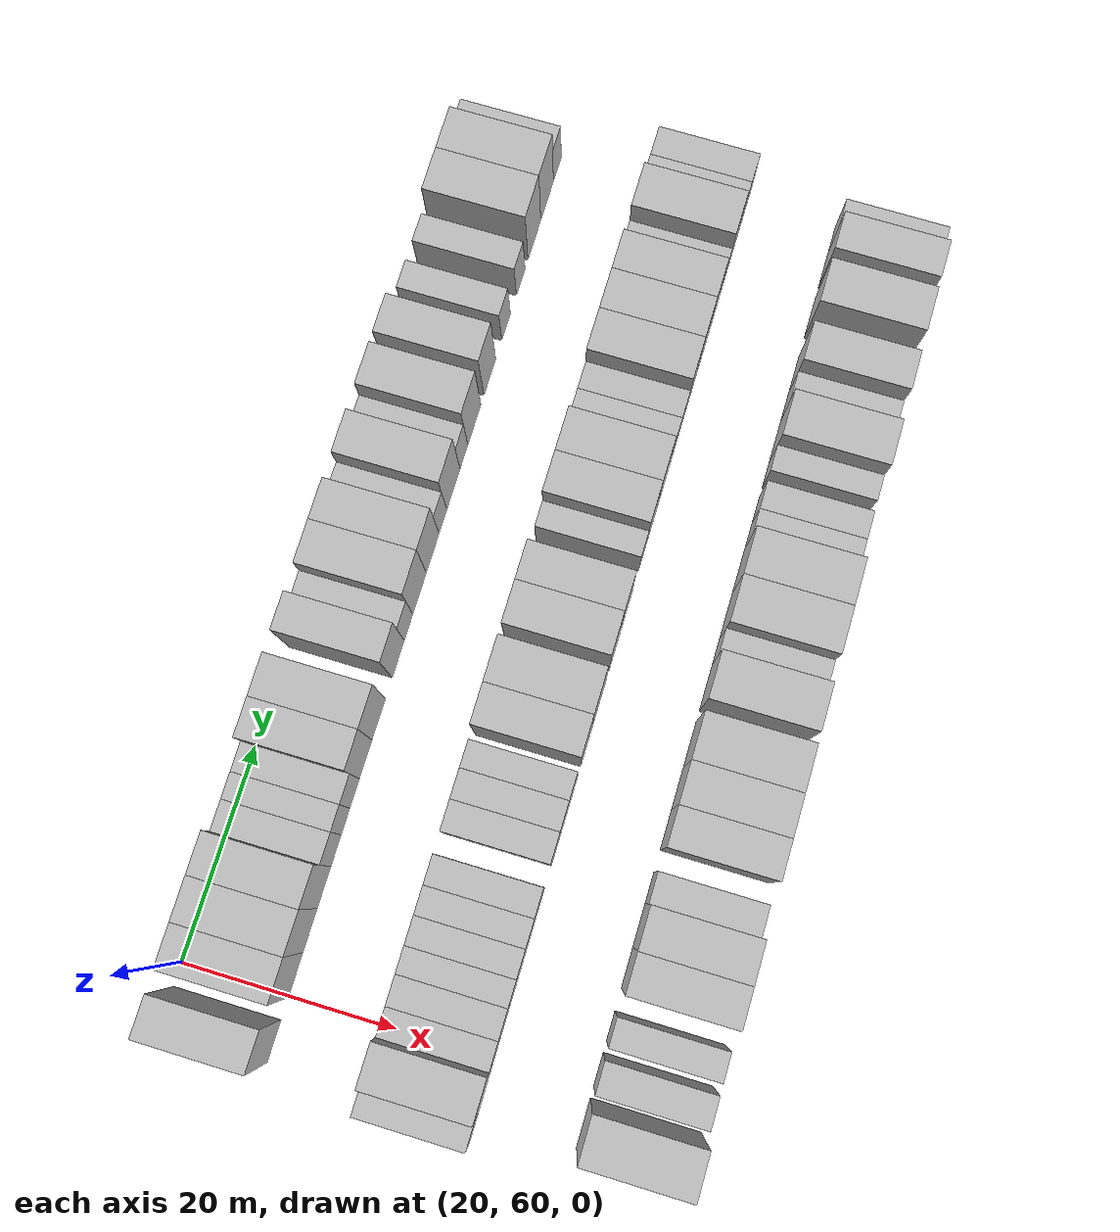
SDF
<sdf version="1.6">
 <world name="default">
  <model name="building_71">
   <static>1</static>
   <pose>25.0000 55.9439 0 0.000000 0.000000 0.000000</pose>
   <link name="link">
    <pose>0 0 4.50 0 0 0</pose>
    <collision name="collision"><geometry><box><size>10.0000 3.7738 9.0000</size></box></geometry></collision>
    <visual name="visual">
     <cast_shadows>0</cast_shadows>
     <geometry><box><size>10.0000 3.7738 9.0000</size></box></geometry>
     <material>
      <script>
       <uri>model://HANNAS_wall/materials/scripts</uri>
       <uri>model://HANNAS_wall/materials/textures</uri>
       <name>vrc/HANNAS_wall</name>
      </script>
     </material>
    </visual>
   </link>
  </model>
  <model name="building_72">
   <static>1</static>
   <pose>25.0000 61.8441 0 0.000000 0.000000 0.000000</pose>
   <link name="link">
    <pose>0 0 4.50 0 0 0</pose>
    <collision name="collision"><geometry><box><size>10.0000 4.0265 9.0000</size></box></geometry></collision>
    <visual name="visual">
     <cast_shadows>0</cast_shadows>
     <geometry><box><size>10.0000 4.0265 9.0000</size></box></geometry>
     <material>
      <script>
       <uri>model://HANNAS_wall/materials/scripts</uri>
       <uri>model://HANNAS_wall/materials/textures</uri>
       <name>vrc/HANNAS_wall</name>
      </script>
     </material>
    </visual>
   </link>
  </model>
  <model name="building_73">
   <static>1</static>
   <pose>25.0000 65.8667 0 0.000000 0.000000 0.000000</pose>
   <link name="link">
    <pose>0 0 4.50 0 0 0</pose>
    <collision name="collision"><geometry><box><size>10.0000 4.0188 9.0000</size></box></geometry></collision>
    <visual name="visual">
     <cast_shadows>0</cast_shadows>
     <geometry><box><size>10.0000 4.0188 9.0000</size></box></geometry>
     <material>
      <script>
       <uri>model://HANNAS_wall/materials/scripts</uri>
       <uri>model://HANNAS_wall/materials/textures</uri>
       <name>vrc/HANNAS_wall</name>
      </script>
     </material>
    </visual>
   </link>
  </model>
  <model name="building_74">
   <static>1</static>
   <pose>25.0000 69.8110 0 0.000000 0.000000 0.000000</pose>
   <link name="link">
    <pose>0 0 4.50 0 0 0</pose>
    <collision name="collision"><geometry><box><size>10.0000 3.8698 9.0000</size></box></geometry></collision>
    <visual name="visual">
     <cast_shadows>0</cast_shadows>
     <geometry><box><size>10.0000 3.8698 9.0000</size></box></geometry>
     <material>
      <script>
       <uri>model://HANNAS_wall/materials/scripts</uri>
       <uri>model://HANNAS_wall/materials/textures</uri>
       <name>vrc/HANNAS_wall</name>
      </script>
     </material>
    </visual>
   </link>
  </model>
  <model name="building_75">
   <static>1</static>
   <pose>25.0000 73.2030 0 0.000000 0.000000 0.000000</pose>
   <link name="link">
    <pose>0 0 3.00 0 0 0</pose>
    <collision name="collision"><geometry><box><size>10.0000 2.9143 6.0000</size></box></geometry></collision>
    <visual name="visual">
     <cast_shadows>0</cast_shadows>
     <geometry><box><size>10.0000 2.9143 6.0000</size></box></geometry>
     <material>
      <script>
       <uri>model://HANNAS_wall/materials/scripts</uri>
       <uri>model://HANNAS_wall/materials/textures</uri>
       <name>vrc/HANNAS_wall</name>
      </script>
     </material>
    </visual>
   </link>
  </model>
  <model name="building_76">
   <static>1</static>
   <pose>25.0000 75.8986 0 0.000000 0.000000 0.000000</pose>
   <link name="link">
    <pose>0 0 3.00 0 0 0</pose>
    <collision name="collision"><geometry><box><size>10.0000 2.4769 6.0000</size></box></geometry></collision>
    <visual name="visual">
     <cast_shadows>0</cast_shadows>
     <geometry><box><size>10.0000 2.4769 6.0000</size></box></geometry>
     <material>
      <script>
       <uri>model://HANNAS_wall/materials/scripts</uri>
       <uri>model://HANNAS_wall/materials/textures</uri>
       <name>vrc/HANNAS_wall</name>
      </script>
     </material>
    </visual>
   </link>
  </model>
  <model name="building_77">
   <static>1</static>
   <pose>25.0000 78.5214 0 0.000000 0.000000 0.000000</pose>
   <link name="link">
    <pose>0 0 3.00 0 0 0</pose>
    <collision name="collision"><geometry><box><size>10.0000 2.7688 6.0000</size></box></geometry></collision>
    <visual name="visual">
     <cast_shadows>0</cast_shadows>
     <geometry><box><size>10.0000 2.7688 6.0000</size></box></geometry>
     <material>
      <script>
       <uri>model://HANNAS_wall/materials/scripts</uri>
       <uri>model://HANNAS_wall/materials/textures</uri>
       <name>vrc/HANNAS_wall</name>
      </script>
     </material>
    </visual>
   </link>
  </model>
  <model name="building_78">
   <static>1</static>
   <pose>25.0000 81.7602 0 0.000000 0.000000 0.000000</pose>
   <link name="link">
    <pose>0 0 4.50 0 0 0</pose>
    <collision name="collision"><geometry><box><size>10.0000 3.7087 9.0000</size></box></geometry></collision>
    <visual name="visual">
     <cast_shadows>0</cast_shadows>
     <geometry><box><size>10.0000 3.7087 9.0000</size></box></geometry>
     <material>
      <script>
       <uri>model://HANNAS_wall/materials/scripts</uri>
       <uri>model://HANNAS_wall/materials/textures</uri>
       <name>vrc/HANNAS_wall</name>
      </script>
     </material>
    </visual>
   </link>
  </model>
  <model name="building_79">
   <static>1</static>
   <pose>25.0000 85.6125 0 0.000000 0.000000 0.000000</pose>
   <link name="link">
    <pose>0 0 4.50 0 0 0</pose>
    <collision name="collision"><geometry><box><size>10.0000 3.9959 9.0000</size></box></geometry></collision>
    <visual name="visual">
     <cast_shadows>0</cast_shadows>
     <geometry><box><size>10.0000 3.9959 9.0000</size></box></geometry>
     <material>
      <script>
       <uri>model://HANNAS_wall/materials/scripts</uri>
       <uri>model://HANNAS_wall/materials/textures</uri>
       <name>vrc/HANNAS_wall</name>
      </script>
     </material>
    </visual>
   </link>
  </model>
  <model name="building_80">
   <static>1</static>
   <pose>25.0000 91.4239 0 0.000000 0.000000 0.000000</pose>
   <link name="link">
    <pose>0 0 4.50 0 0 0</pose>
    <collision name="collision"><geometry><box><size>10.0000 3.6268 9.0000</size></box></geometry></collision>
    <visual name="visual">
     <cast_shadows>0</cast_shadows>
     <geometry><box><size>10.0000 3.6268 9.0000</size></box></geometry>
     <material>
      <script>
       <uri>model://HANNAS_wall/materials/scripts</uri>
       <uri>model://HANNAS_wall/materials/textures</uri>
       <name>vrc/HANNAS_wall</name>
      </script>
     </material>
    </visual>
   </link>
  </model>
  <model name="building_81">
   <static>1</static>
   <pose>25.0000 94.5368 0 0.000000 0.000000 0.000000</pose>
   <link name="link">
    <pose>0 0 3.00 0 0 0</pose>
    <collision name="collision"><geometry><box><size>10.0000 2.5991 6.0000</size></box></geometry></collision>
    <visual name="visual">
     <cast_shadows>0</cast_shadows>
     <geometry><box><size>10.0000 2.5991 6.0000</size></box></geometry>
     <material>
      <script>
       <uri>model://HANNAS_wall/materials/scripts</uri>
       <uri>model://HANNAS_wall/materials/textures</uri>
       <name>vrc/HANNAS_wall</name>
      </script>
     </material>
    </visual>
   </link>
  </model>
  <model name="building_82">
   <static>1</static>
   <pose>25.0000 97.9126 0 0.000000 0.000000 0.000000</pose>
   <link name="link">
    <pose>0 0 4.50 0 0 0</pose>
    <collision name="collision"><geometry><box><size>10.0000 4.1524 9.0000</size></box></geometry></collision>
    <visual name="visual">
     <cast_shadows>0</cast_shadows>
     <geometry><box><size>10.0000 4.1524 9.0000</size></box></geometry>
     <material>
      <script>
       <uri>model://HANNAS_wall/materials/scripts</uri>
       <uri>model://HANNAS_wall/materials/textures</uri>
       <name>vrc/HANNAS_wall</name>
      </script>
     </material>
    </visual>
   </link>
  </model>
  <model name="building_83">
   <static>1</static>
   <pose>25.0000 101.9574 0 0.000000 0.000000 0.000000</pose>
   <link name="link">
    <pose>0 0 4.50 0 0 0</pose>
    <collision name="collision"><geometry><box><size>10.0000 3.9373 9.0000</size></box></geometry></collision>
    <visual name="visual">
     <cast_shadows>0</cast_shadows>
     <geometry><box><size>10.0000 3.9373 9.0000</size></box></geometry>
     <material>
      <script>
       <uri>model://HANNAS_wall/materials/scripts</uri>
       <uri>model://HANNAS_wall/materials/textures</uri>
       <name>vrc/HANNAS_wall</name>
      </script>
     </material>
    </visual>
   </link>
  </model>
  <model name="building_84">
   <static>1</static>
   <pose>25.0000 105.1400 0 0.000000 0.000000 0.000000</pose>
   <link name="link">
    <pose>0 0 3.00 0 0 0</pose>
    <collision name="collision"><geometry><box><size>10.0000 2.4280 6.0000</size></box></geometry></collision>
    <visual name="visual">
     <cast_shadows>0</cast_shadows>
     <geometry><box><size>10.0000 2.4280 6.0000</size></box></geometry>
     <material>
      <script>
       <uri>model://HANNAS_wall/materials/scripts</uri>
       <uri>model://HANNAS_wall/materials/textures</uri>
       <name>vrc/HANNAS_wall</name>
      </script>
     </material>
    </visual>
   </link>
  </model>
  <model name="building_85">
   <static>1</static>
   <pose>25.0000 108.4403 0 0.000000 0.000000 0.000000</pose>
   <link name="link">
    <pose>0 0 4.50 0 0 0</pose>
    <collision name="collision"><geometry><box><size>10.0000 4.1726 9.0000</size></box></geometry></collision>
    <visual name="visual">
     <cast_shadows>0</cast_shadows>
     <geometry><box><size>10.0000 4.1726 9.0000</size></box></geometry>
     <material>
      <script>
       <uri>model://HANNAS_wall/materials/scripts</uri>
       <uri>model://HANNAS_wall/materials/textures</uri>
       <name>vrc/HANNAS_wall</name>
      </script>
     </material>
    </visual>
   </link>
  </model>
  <model name="building_86">
   <static>1</static>
   <pose>25.0000 111.7646 0 0.000000 0.000000 0.000000</pose>
   <link name="link">
    <pose>0 0 3.00 0 0 0</pose>
    <collision name="collision"><geometry><box><size>10.0000 2.4761 6.0000</size></box></geometry></collision>
    <visual name="visual">
     <cast_shadows>0</cast_shadows>
     <geometry><box><size>10.0000 2.4761 6.0000</size></box></geometry>
     <material>
      <script>
       <uri>model://HANNAS_wall/materials/scripts</uri>
       <uri>model://HANNAS_wall/materials/textures</uri>
       <name>vrc/HANNAS_wall</name>
      </script>
     </material>
    </visual>
   </link>
  </model>
  <model name="building_87">
   <static>1</static>
   <pose>25.0000 115.0897 0 0.000000 0.000000 0.000000</pose>
   <link name="link">
    <pose>0 0 4.50 0 0 0</pose>
    <collision name="collision"><geometry><box><size>10.0000 4.1742 9.0000</size></box></geometry></collision>
    <visual name="visual">
     <cast_shadows>0</cast_shadows>
     <geometry><box><size>10.0000 4.1742 9.0000</size></box></geometry>
     <material>
      <script>
       <uri>model://HANNAS_wall/materials/scripts</uri>
       <uri>model://HANNAS_wall/materials/textures</uri>
       <name>vrc/HANNAS_wall</name>
      </script>
     </material>
    </visual>
   </link>
  </model>
  <model name="building_88">
   <static>1</static>
   <pose>25.0000 120.0916 0 0.000000 0.000000 0.000000</pose>
   <link name="link">
    <pose>0 0 4.50 0 0 0</pose>
    <collision name="collision"><geometry><box><size>10.0000 3.8295 9.0000</size></box></geometry></collision>
    <visual name="visual">
     <cast_shadows>0</cast_shadows>
     <geometry><box><size>10.0000 3.8295 9.0000</size></box></geometry>
     <material>
      <script>
       <uri>model://HANNAS_wall/materials/scripts</uri>
       <uri>model://HANNAS_wall/materials/textures</uri>
       <name>vrc/HANNAS_wall</name>
      </script>
     </material>
    </visual>
   </link>
  </model>
  <model name="building_89">
   <static>1</static>
   <pose>25.0000 125.4223 0 0.000000 0.000000 0.000000</pose>
   <link name="link">
    <pose>0 0 3.00 0 0 0</pose>
    <collision name="collision"><geometry><box><size>10.0000 2.8321 6.0000</size></box></geometry></collision>
    <visual name="visual">
     <cast_shadows>0</cast_shadows>
     <geometry><box><size>10.0000 2.8321 6.0000</size></box></geometry>
     <material>
      <script>
       <uri>model://HANNAS_wall/materials/scripts</uri>
       <uri>model://HANNAS_wall/materials/textures</uri>
       <name>vrc/HANNAS_wall</name>
      </script>
     </material>
    </visual>
   </link>
  </model>
  <model name="building_90">
   <static>1</static>
   <pose>25.0000 130.2764 0 0.000000 0.000000 0.000000</pose>
   <link name="link">
    <pose>0 0 3.00 0 0 0</pose>
    <collision name="collision"><geometry><box><size>10.0000 2.8761 6.0000</size></box></geometry></collision>
    <visual name="visual">
     <cast_shadows>0</cast_shadows>
     <geometry><box><size>10.0000 2.8761 6.0000</size></box></geometry>
     <material>
      <script>
       <uri>model://HANNAS_wall/materials/scripts</uri>
       <uri>model://HANNAS_wall/materials/textures</uri>
       <name>vrc/HANNAS_wall</name>
      </script>
     </material>
    </visual>
   </link>
  </model>
  <model name="building_91">
   <static>1</static>
   <pose>25.0000 134.8824 0 0.000000 0.000000 0.000000</pose>
   <link name="link">
    <pose>0 0 4.50 0 0 0</pose>
    <collision name="collision"><geometry><box><size>10.0000 4.3359 9.0000</size></box></geometry></collision>
    <visual name="visual">
     <cast_shadows>0</cast_shadows>
     <geometry><box><size>10.0000 4.3359 9.0000</size></box></geometry>
     <material>
      <script>
       <uri>model://HANNAS_wall/materials/scripts</uri>
       <uri>model://HANNAS_wall/materials/textures</uri>
       <name>vrc/HANNAS_wall</name>
      </script>
     </material>
    </visual>
   </link>
  </model>
  <model name="building_92">
   <static>1</static>
   <pose>25.0000 139.2029 0 0.000000 0.000000 0.000000</pose>
   <link name="link">
    <pose>0 0 4.50 0 0 0</pose>
    <collision name="collision"><geometry><box><size>10.0000 4.3052 9.0000</size></box></geometry></collision>
    <visual name="visual">
     <cast_shadows>0</cast_shadows>
     <geometry><box><size>10.0000 4.3052 9.0000</size></box></geometry>
     <material>
      <script>
       <uri>model://HANNAS_wall/materials/scripts</uri>
       <uri>model://HANNAS_wall/materials/textures</uri>
       <name>vrc/HANNAS_wall</name>
      </script>
     </material>
    </visual>
   </link>
  </model>
  <model name="building_93">
   <static>1</static>
   <pose>25.0000 142.6970 0 0.000000 0.000000 0.000000</pose>
   <link name="link">
    <pose>0 0 3.00 0 0 0</pose>
    <collision name="collision"><geometry><box><size>10.0000 2.6829 6.0000</size></box></geometry></collision>
    <visual name="visual">
     <cast_shadows>0</cast_shadows>
     <geometry><box><size>10.0000 2.6829 6.0000</size></box></geometry>
     <material>
      <script>
       <uri>model://HANNAS_wall/materials/scripts</uri>
       <uri>model://HANNAS_wall/materials/textures</uri>
       <name>vrc/HANNAS_wall</name>
      </script>
     </material>
    </visual>
   </link>
  </model>
  <model name="building_185">
   <static>1</static>
   <pose>44.0000 54.2445 0 0.000000 0.000000 0.000000</pose>
   <link name="link">
    <pose>0 0 3.00 0 0 0</pose>
    <collision name="collision"><geometry><box><size>10.0000 2.6319 6.0000</size></box></geometry></collision>
    <visual name="visual">
     <cast_shadows>0</cast_shadows>
     <geometry><box><size>10.0000 2.6319 6.0000</size></box></geometry>
     <material>
      <script>
       <uri>model://HANNAS_wall/materials/scripts</uri>
       <uri>model://HANNAS_wall/materials/textures</uri>
       <name>vrc/HANNAS_wall</name>
      </script>
     </material>
    </visual>
   </link>
  </model>
  <model name="building_186">
   <static>1</static>
   <pose>44.0000 57.5705 0 0.000000 0.000000 0.000000</pose>
   <link name="link">
    <pose>0 0 4.50 0 0 0</pose>
    <collision name="collision"><geometry><box><size>10.0000 4.0200 9.0000</size></box></geometry></collision>
    <visual name="visual">
     <cast_shadows>0</cast_shadows>
     <geometry><box><size>10.0000 4.0200 9.0000</size></box></geometry>
     <material>
      <script>
       <uri>model://HANNAS_wall/materials/scripts</uri>
       <uri>model://HANNAS_wall/materials/textures</uri>
       <name>vrc/HANNAS_wall</name>
      </script>
     </material>
    </visual>
   </link>
  </model>
  <model name="building_187">
   <static>1</static>
   <pose>44.0000 60.8925 0 0.000000 0.000000 0.000000</pose>
   <link name="link">
    <pose>0 0 3.00 0 0 0</pose>
    <collision name="collision"><geometry><box><size>10.0000 2.6240 6.0000</size></box></geometry></collision>
    <visual name="visual">
     <cast_shadows>0</cast_shadows>
     <geometry><box><size>10.0000 2.6240 6.0000</size></box></geometry>
     <material>
      <script>
       <uri>model://HANNAS_wall/materials/scripts</uri>
       <uri>model://HANNAS_wall/materials/textures</uri>
       <name>vrc/HANNAS_wall</name>
      </script>
     </material>
    </visual>
   </link>
  </model>
  <model name="building_188">
   <static>1</static>
   <pose>44.0000 63.5874 0 0.000000 0.000000 0.000000</pose>
   <link name="link">
    <pose>0 0 3.00 0 0 0</pose>
    <collision name="collision"><geometry><box><size>10.0000 2.7658 6.0000</size></box></geometry></collision>
    <visual name="visual">
     <cast_shadows>0</cast_shadows>
     <geometry><box><size>10.0000 2.7658 6.0000</size></box></geometry>
     <material>
      <script>
       <uri>model://HANNAS_wall/materials/scripts</uri>
       <uri>model://HANNAS_wall/materials/textures</uri>
       <name>vrc/HANNAS_wall</name>
      </script>
     </material>
    </visual>
   </link>
  </model>
  <model name="building_189">
   <static>1</static>
   <pose>44.0000 66.2023 0 0.000000 0.000000 0.000000</pose>
   <link name="link">
    <pose>0 0 3.00 0 0 0</pose>
    <collision name="collision"><geometry><box><size>10.0000 2.4640 6.0000</size></box></geometry></collision>
    <visual name="visual">
     <cast_shadows>0</cast_shadows>
     <geometry><box><size>10.0000 2.4640 6.0000</size></box></geometry>
     <material>
      <script>
       <uri>model://HANNAS_wall/materials/scripts</uri>
       <uri>model://HANNAS_wall/materials/textures</uri>
       <name>vrc/HANNAS_wall</name>
      </script>
     </material>
    </visual>
   </link>
  </model>
  <model name="building_190">
   <static>1</static>
   <pose>44.0000 68.7505 0 0.000000 0.000000 0.000000</pose>
   <link name="link">
    <pose>0 0 3.00 0 0 0</pose>
    <collision name="collision"><geometry><box><size>10.0000 2.6325 6.0000</size></box></geometry></collision>
    <visual name="visual">
     <cast_shadows>0</cast_shadows>
     <geometry><box><size>10.0000 2.6325 6.0000</size></box></geometry>
     <material>
      <script>
       <uri>model://HANNAS_wall/materials/scripts</uri>
       <uri>model://HANNAS_wall/materials/textures</uri>
       <name>vrc/HANNAS_wall</name>
      </script>
     </material>
    </visual>
   </link>
  </model>
  <model name="building_191">
   <static>1</static>
   <pose>44.0000 71.3828 0 0.000000 0.000000 0.000000</pose>
   <link name="link">
    <pose>0 0 3.00 0 0 0</pose>
    <collision name="collision"><geometry><box><size>10.0000 2.6321 6.0000</size></box></geometry></collision>
    <visual name="visual">
     <cast_shadows>0</cast_shadows>
     <geometry><box><size>10.0000 2.6321 6.0000</size></box></geometry>
     <material>
      <script>
       <uri>model://HANNAS_wall/materials/scripts</uri>
       <uri>model://HANNAS_wall/materials/textures</uri>
       <name>vrc/HANNAS_wall</name>
      </script>
     </material>
    </visual>
   </link>
  </model>
  <model name="building_192">
   <static>1</static>
   <pose>44.0000 74.0663 0 0.000000 0.000000 0.000000</pose>
   <link name="link">
    <pose>0 0 3.00 0 0 0</pose>
    <collision name="collision"><geometry><box><size>10.0000 2.7350 6.0000</size></box></geometry></collision>
    <visual name="visual">
     <cast_shadows>0</cast_shadows>
     <geometry><box><size>10.0000 2.7350 6.0000</size></box></geometry>
     <material>
      <script>
       <uri>model://HANNAS_wall/materials/scripts</uri>
       <uri>model://HANNAS_wall/materials/textures</uri>
       <name>vrc/HANNAS_wall</name>
      </script>
     </material>
    </visual>
   </link>
  </model>
  <model name="building_193">
   <static>1</static>
   <pose>44.0000 78.8875 0 0.000000 0.000000 0.000000</pose>
   <link name="link">
    <pose>0 0 3.00 0 0 0</pose>
    <collision name="collision"><geometry><box><size>10.0000 2.9073 6.0000</size></box></geometry></collision>
    <visual name="visual">
     <cast_shadows>0</cast_shadows>
     <geometry><box><size>10.0000 2.9073 6.0000</size></box></geometry>
     <material>
      <script>
       <uri>model://HANNAS_wall/materials/scripts</uri>
       <uri>model://HANNAS_wall/materials/textures</uri>
       <name>vrc/HANNAS_wall</name>
      </script>
     </material>
    </visual>
   </link>
  </model>
  <model name="building_194">
   <static>1</static>
   <pose>44.0000 81.7432 0 0.000000 0.000000 0.000000</pose>
   <link name="link">
    <pose>0 0 3.00 0 0 0</pose>
    <collision name="collision"><geometry><box><size>10.0000 2.8042 6.0000</size></box></geometry></collision>
    <visual name="visual">
     <cast_shadows>0</cast_shadows>
     <geometry><box><size>10.0000 2.8042 6.0000</size></box></geometry>
     <material>
      <script>
       <uri>model://HANNAS_wall/materials/scripts</uri>
       <uri>model://HANNAS_wall/materials/textures</uri>
       <name>vrc/HANNAS_wall</name>
      </script>
     </material>
    </visual>
   </link>
  </model>
  <model name="building_195">
   <static>1</static>
   <pose>44.0000 84.4424 0 0.000000 0.000000 0.000000</pose>
   <link name="link">
    <pose>0 0 3.00 0 0 0</pose>
    <collision name="collision"><geometry><box><size>10.0000 2.5941 6.0000</size></box></geometry></collision>
    <visual name="visual">
     <cast_shadows>0</cast_shadows>
     <geometry><box><size>10.0000 2.5941 6.0000</size></box></geometry>
     <material>
      <script>
       <uri>model://HANNAS_wall/materials/scripts</uri>
       <uri>model://HANNAS_wall/materials/textures</uri>
       <name>vrc/HANNAS_wall</name>
      </script>
     </material>
    </visual>
   </link>
  </model>
  <model name="building_196">
   <static>1</static>
   <pose>44.0000 88.6614 0 0.000000 0.000000 0.000000</pose>
   <link name="link">
    <pose>0 0 4.50 0 0 0</pose>
    <collision name="collision"><geometry><box><size>10.0000 3.8440 9.0000</size></box></geometry></collision>
    <visual name="visual">
     <cast_shadows>0</cast_shadows>
     <geometry><box><size>10.0000 3.8440 9.0000</size></box></geometry>
     <material>
      <script>
       <uri>model://HANNAS_wall/materials/scripts</uri>
       <uri>model://HANNAS_wall/materials/textures</uri>
       <name>vrc/HANNAS_wall</name>
      </script>
     </material>
    </visual>
   </link>
  </model>
  <model name="building_197">
   <static>1</static>
   <pose>44.0000 92.7520 0 0.000000 0.000000 0.000000</pose>
   <link name="link">
    <pose>0 0 4.50 0 0 0</pose>
    <collision name="collision"><geometry><box><size>10.0000 4.3371 9.0000</size></box></geometry></collision>
    <visual name="visual">
     <cast_shadows>0</cast_shadows>
     <geometry><box><size>10.0000 4.3371 9.0000</size></box></geometry>
     <material>
      <script>
       <uri>model://HANNAS_wall/materials/scripts</uri>
       <uri>model://HANNAS_wall/materials/textures</uri>
       <name>vrc/HANNAS_wall</name>
      </script>
     </material>
    </visual>
   </link>
  </model>
  <model name="building_198">
   <static>1</static>
   <pose>44.0000 97.9576 0 0.000000 0.000000 0.000000</pose>
   <link name="link">
    <pose>0 0 4.50 0 0 0</pose>
    <collision name="collision"><geometry><box><size>10.0000 4.0742 9.0000</size></box></geometry></collision>
    <visual name="visual">
     <cast_shadows>0</cast_shadows>
     <geometry><box><size>10.0000 4.0742 9.0000</size></box></geometry>
     <material>
      <script>
       <uri>model://HANNAS_wall/materials/scripts</uri>
       <uri>model://HANNAS_wall/materials/textures</uri>
       <name>vrc/HANNAS_wall</name>
      </script>
     </material>
    </visual>
   </link>
  </model>
  <model name="building_199">
   <static>1</static>
   <pose>44.0000 101.8609 0 0.000000 0.000000 0.000000</pose>
   <link name="link">
    <pose>0 0 4.50 0 0 0</pose>
    <collision name="collision"><geometry><box><size>10.0000 3.7324 9.0000</size></box></geometry></collision>
    <visual name="visual">
     <cast_shadows>0</cast_shadows>
     <geometry><box><size>10.0000 3.7324 9.0000</size></box></geometry>
     <material>
      <script>
       <uri>model://HANNAS_wall/materials/scripts</uri>
       <uri>model://HANNAS_wall/materials/textures</uri>
       <name>vrc/HANNAS_wall</name>
      </script>
     </material>
    </visual>
   </link>
  </model>
  <model name="building_200">
   <static>1</static>
   <pose>44.0000 106.9831 0 0.000000 0.000000 0.000000</pose>
   <link name="link">
    <pose>0 0 3.00 0 0 0</pose>
    <collision name="collision"><geometry><box><size>10.0000 2.5119 6.0000</size></box></geometry></collision>
    <visual name="visual">
     <cast_shadows>0</cast_shadows>
     <geometry><box><size>10.0000 2.5119 6.0000</size></box></geometry>
     <material>
      <script>
       <uri>model://HANNAS_wall/materials/scripts</uri>
       <uri>model://HANNAS_wall/materials/textures</uri>
       <name>vrc/HANNAS_wall</name>
      </script>
     </material>
    </visual>
   </link>
  </model>
  <model name="building_201">
   <static>1</static>
   <pose>44.0000 110.2364 0 0.000000 0.000000 0.000000</pose>
   <link name="link">
    <pose>0 0 4.50 0 0 0</pose>
    <collision name="collision"><geometry><box><size>10.0000 3.9947 9.0000</size></box></geometry></collision>
    <visual name="visual">
     <cast_shadows>0</cast_shadows>
     <geometry><box><size>10.0000 3.9947 9.0000</size></box></geometry>
     <material>
      <script>
       <uri>model://HANNAS_wall/materials/scripts</uri>
       <uri>model://HANNAS_wall/materials/textures</uri>
       <name>vrc/HANNAS_wall</name>
      </script>
     </material>
    </visual>
   </link>
  </model>
  <model name="building_202">
   <static>1</static>
   <pose>44.0000 114.3692 0 0.000000 0.000000 0.000000</pose>
   <link name="link">
    <pose>0 0 4.50 0 0 0</pose>
    <collision name="collision"><geometry><box><size>10.0000 4.2709 9.0000</size></box></geometry></collision>
    <visual name="visual">
     <cast_shadows>0</cast_shadows>
     <geometry><box><size>10.0000 4.2709 9.0000</size></box></geometry>
     <material>
      <script>
       <uri>model://HANNAS_wall/materials/scripts</uri>
       <uri>model://HANNAS_wall/materials/textures</uri>
       <name>vrc/HANNAS_wall</name>
      </script>
     </material>
    </visual>
   </link>
  </model>
  <model name="building_203">
   <static>1</static>
   <pose>44.0000 117.9328 0 0.000000 0.000000 0.000000</pose>
   <link name="link">
    <pose>0 0 3.00 0 0 0</pose>
    <collision name="collision"><geometry><box><size>10.0000 2.8562 6.0000</size></box></geometry></collision>
    <visual name="visual">
     <cast_shadows>0</cast_shadows>
     <geometry><box><size>10.0000 2.8562 6.0000</size></box></geometry>
     <material>
      <script>
       <uri>model://HANNAS_wall/materials/scripts</uri>
       <uri>model://HANNAS_wall/materials/textures</uri>
       <name>vrc/HANNAS_wall</name>
      </script>
     </material>
    </visual>
   </link>
  </model>
  <model name="building_204">
   <static>1</static>
   <pose>44.0000 120.7170 0 0.000000 0.000000 0.000000</pose>
   <link name="link">
    <pose>0 0 3.00 0 0 0</pose>
    <collision name="collision"><geometry><box><size>10.0000 2.7122 6.0000</size></box></geometry></collision>
    <visual name="visual">
     <cast_shadows>0</cast_shadows>
     <geometry><box><size>10.0000 2.7122 6.0000</size></box></geometry>
     <material>
      <script>
       <uri>model://HANNAS_wall/materials/scripts</uri>
       <uri>model://HANNAS_wall/materials/textures</uri>
       <name>vrc/HANNAS_wall</name>
      </script>
     </material>
    </visual>
   </link>
  </model>
  <model name="building_205">
   <static>1</static>
   <pose>44.0000 124.1599 0 0.000000 0.000000 0.000000</pose>
   <link name="link">
    <pose>0 0 4.50 0 0 0</pose>
    <collision name="collision"><geometry><box><size>10.0000 4.1736 9.0000</size></box></geometry></collision>
    <visual name="visual">
     <cast_shadows>0</cast_shadows>
     <geometry><box><size>10.0000 4.1736 9.0000</size></box></geometry>
     <material>
      <script>
       <uri>model://HANNAS_wall/materials/scripts</uri>
       <uri>model://HANNAS_wall/materials/textures</uri>
       <name>vrc/HANNAS_wall</name>
      </script>
     </material>
    </visual>
   </link>
  </model>
  <model name="building_206">
   <static>1</static>
   <pose>44.0000 128.2569 0 0.000000 0.000000 0.000000</pose>
   <link name="link">
    <pose>0 0 4.50 0 0 0</pose>
    <collision name="collision"><geometry><box><size>10.0000 4.0204 9.0000</size></box></geometry></collision>
    <visual name="visual">
     <cast_shadows>0</cast_shadows>
     <geometry><box><size>10.0000 4.0204 9.0000</size></box></geometry>
     <material>
      <script>
       <uri>model://HANNAS_wall/materials/scripts</uri>
       <uri>model://HANNAS_wall/materials/textures</uri>
       <name>vrc/HANNAS_wall</name>
      </script>
     </material>
    </visual>
   </link>
  </model>
  <model name="building_207">
   <static>1</static>
   <pose>44.0000 132.2346 0 0.000000 0.000000 0.000000</pose>
   <link name="link">
    <pose>0 0 4.50 0 0 0</pose>
    <collision name="collision"><geometry><box><size>10.0000 3.9350 9.0000</size></box></geometry></collision>
    <visual name="visual">
     <cast_shadows>0</cast_shadows>
     <geometry><box><size>10.0000 3.9350 9.0000</size></box></geometry>
     <material>
      <script>
       <uri>model://HANNAS_wall/materials/scripts</uri>
       <uri>model://HANNAS_wall/materials/textures</uri>
       <name>vrc/HANNAS_wall</name>
      </script>
     </material>
    </visual>
   </link>
  </model>
  <model name="building_208">
   <static>1</static>
   <pose>44.0000 135.4280 0 0.000000 0.000000 0.000000</pose>
   <link name="link">
    <pose>0 0 3.00 0 0 0</pose>
    <collision name="collision"><geometry><box><size>10.0000 2.4517 6.0000</size></box></geometry></collision>
    <visual name="visual">
     <cast_shadows>0</cast_shadows>
     <geometry><box><size>10.0000 2.4517 6.0000</size></box></geometry>
     <material>
      <script>
       <uri>model://HANNAS_wall/materials/scripts</uri>
       <uri>model://HANNAS_wall/materials/textures</uri>
       <name>vrc/HANNAS_wall</name>
      </script>
     </material>
    </visual>
   </link>
  </model>
  <model name="building_209">
   <static>1</static>
   <pose>44.0000 138.8809 0 0.000000 0.000000 0.000000</pose>
   <link name="link">
    <pose>0 0 4.50 0 0 0</pose>
    <collision name="collision"><geometry><box><size>10.0000 4.4540 9.0000</size></box></geometry></collision>
    <visual name="visual">
     <cast_shadows>0</cast_shadows>
     <geometry><box><size>10.0000 4.4540 9.0000</size></box></geometry>
     <material>
      <script>
       <uri>model://HANNAS_wall/materials/scripts</uri>
       <uri>model://HANNAS_wall/materials/textures</uri>
       <name>vrc/HANNAS_wall</name>
      </script>
     </material>
    </visual>
   </link>
  </model>
  <model name="building_210">
   <static>1</static>
   <pose>44.0000 142.4141 0 0.000000 0.000000 0.000000</pose>
   <link name="link">
    <pose>0 0 3.00 0 0 0</pose>
    <collision name="collision"><geometry><box><size>10.0000 2.6124 6.0000</size></box></geometry></collision>
    <visual name="visual">
     <cast_shadows>0</cast_shadows>
     <geometry><box><size>10.0000 2.6124 6.0000</size></box></geometry>
     <material>
      <script>
       <uri>model://HANNAS_wall/materials/scripts</uri>
       <uri>model://HANNAS_wall/materials/textures</uri>
       <name>vrc/HANNAS_wall</name>
      </script>
     </material>
    </visual>
   </link>
  </model>
  <model name="building_211">
   <static>1</static>
   <pose>44.0000 145.2198 0 0.000000 0.000000 0.000000</pose>
   <link name="link">
    <pose>0 0 3.00 0 0 0</pose>
    <collision name="collision"><geometry><box><size>10.0000 2.9990 6.0000</size></box></geometry></collision>
    <visual name="visual">
     <cast_shadows>0</cast_shadows>
     <geometry><box><size>10.0000 2.9990 6.0000</size></box></geometry>
     <material>
      <script>
       <uri>model://HANNAS_wall/materials/scripts</uri>
       <uri>model://HANNAS_wall/materials/textures</uri>
       <name>vrc/HANNAS_wall</name>
      </script>
     </material>
    </visual>
   </link>
  </model>
  <model name="building_313">
   <static>1</static>
   <pose>63.0000 57.1916 0 0.000000 0.000000 0.000000</pose>
   <link name="link">
    <pose>0 0 4.50 0 0 0</pose>
    <collision name="collision"><geometry><box><size>10.0000 4.3061 9.0000</size></box></geometry></collision>
    <visual name="visual">
     <cast_shadows>0</cast_shadows>
     <geometry><box><size>10.0000 4.3061 9.0000</size></box></geometry>
     <material>
      <script>
       <uri>model://HANNAS_wall/materials/scripts</uri>
       <uri>model://HANNAS_wall/materials/textures</uri>
       <name>vrc/HANNAS_wall</name>
      </script>
     </material>
    </visual>
   </link>
  </model>
  <model name="building_314">
   <static>1</static>
   <pose>63.0000 61.8307 0 0.000000 0.000000 0.000000</pose>
   <link name="link">
    <pose>0 0 3.00 0 0 0</pose>
    <collision name="collision"><geometry><box><size>10.0000 2.9721 6.0000</size></box></geometry></collision>
    <visual name="visual">
     <cast_shadows>0</cast_shadows>
     <geometry><box><size>10.0000 2.9721 6.0000</size></box></geometry>
     <material>
      <script>
       <uri>model://HANNAS_wall/materials/scripts</uri>
       <uri>model://HANNAS_wall/materials/textures</uri>
       <name>vrc/HANNAS_wall</name>
      </script>
     </material>
    </visual>
   </link>
  </model>
  <model name="building_315">
   <static>1</static>
   <pose>63.0000 65.6509 0 0.000000 0.000000 0.000000</pose>
   <link name="link">
    <pose>0 0 3.00 0 0 0</pose>
    <collision name="collision"><geometry><box><size>10.0000 2.6682 6.0000</size></box></geometry></collision>
    <visual name="visual">
     <cast_shadows>0</cast_shadows>
     <geometry><box><size>10.0000 2.6682 6.0000</size></box></geometry>
     <material>
      <script>
       <uri>model://HANNAS_wall/materials/scripts</uri>
       <uri>model://HANNAS_wall/materials/textures</uri>
       <name>vrc/HANNAS_wall</name>
      </script>
     </material>
    </visual>
   </link>
  </model>
  <model name="building_316">
   <static>1</static>
   <pose>63.0000 70.8515 0 0.000000 0.000000 0.000000</pose>
   <link name="link">
    <pose>0 0 4.50 0 0 0</pose>
    <collision name="collision"><geometry><box><size>10.0000 3.7330 9.0000</size></box></geometry></collision>
    <visual name="visual">
     <cast_shadows>0</cast_shadows>
     <geometry><box><size>10.0000 3.7330 9.0000</size></box></geometry>
     <material>
      <script>
       <uri>model://HANNAS_wall/materials/scripts</uri>
       <uri>model://HANNAS_wall/materials/textures</uri>
       <name>vrc/HANNAS_wall</name>
      </script>
     </material>
    </visual>
   </link>
  </model>
  <model name="building_317">
   <static>1</static>
   <pose>63.0000 74.6934 0 0.000000 0.000000 0.000000</pose>
   <link name="link">
    <pose>0 0 4.50 0 0 0</pose>
    <collision name="collision"><geometry><box><size>10.0000 3.9508 9.0000</size></box></geometry></collision>
    <visual name="visual">
     <cast_shadows>0</cast_shadows>
     <geometry><box><size>10.0000 3.9508 9.0000</size></box></geometry>
     <material>
      <script>
       <uri>model://HANNAS_wall/materials/scripts</uri>
       <uri>model://HANNAS_wall/materials/textures</uri>
       <name>vrc/HANNAS_wall</name>
      </script>
     </material>
    </visual>
   </link>
  </model>
  <model name="building_318">
   <static>1</static>
   <pose>63.0000 78.1174 0 0.000000 0.000000 0.000000</pose>
   <link name="link">
    <pose>0 0 3.00 0 0 0</pose>
    <collision name="collision"><geometry><box><size>10.0000 2.8972 6.0000</size></box></geometry></collision>
    <visual name="visual">
     <cast_shadows>0</cast_shadows>
     <geometry><box><size>10.0000 2.8972 6.0000</size></box></geometry>
     <material>
      <script>
       <uri>model://HANNAS_wall/materials/scripts</uri>
       <uri>model://HANNAS_wall/materials/textures</uri>
       <name>vrc/HANNAS_wall</name>
      </script>
     </material>
    </visual>
   </link>
  </model>
  <model name="building_319">
   <static>1</static>
   <pose>63.0000 83.4366 0 0.000000 0.000000 0.000000</pose>
   <link name="link">
    <pose>0 0 4.50 0 0 0</pose>
    <collision name="collision"><geometry><box><size>10.0000 3.7412 9.0000</size></box></geometry></collision>
    <visual name="visual">
     <cast_shadows>0</cast_shadows>
     <geometry><box><size>10.0000 3.7412 9.0000</size></box></geometry>
     <material>
      <script>
       <uri>model://HANNAS_wall/materials/scripts</uri>
       <uri>model://HANNAS_wall/materials/textures</uri>
       <name>vrc/HANNAS_wall</name>
      </script>
     </material>
    </visual>
   </link>
  </model>
  <model name="building_320">
   <static>1</static>
   <pose>63.0000 87.2905 0 0.000000 0.000000 0.000000</pose>
   <link name="link">
    <pose>0 0 4.50 0 0 0</pose>
    <collision name="collision"><geometry><box><size>10.0000 3.9666 9.0000</size></box></geometry></collision>
    <visual name="visual">
     <cast_shadows>0</cast_shadows>
     <geometry><box><size>10.0000 3.9666 9.0000</size></box></geometry>
     <material>
      <script>
       <uri>model://HANNAS_wall/materials/scripts</uri>
       <uri>model://HANNAS_wall/materials/textures</uri>
       <name>vrc/HANNAS_wall</name>
      </script>
     </material>
    </visual>
   </link>
  </model>
  <model name="building_321">
   <static>1</static>
   <pose>63.0000 91.4844 0 0.000000 0.000000 0.000000</pose>
   <link name="link">
    <pose>0 0 4.50 0 0 0</pose>
    <collision name="collision"><geometry><box><size>10.0000 4.4211 9.0000</size></box></geometry></collision>
    <visual name="visual">
     <cast_shadows>0</cast_shadows>
     <geometry><box><size>10.0000 4.4211 9.0000</size></box></geometry>
     <material>
      <script>
       <uri>model://HANNAS_wall/materials/scripts</uri>
       <uri>model://HANNAS_wall/materials/textures</uri>
       <name>vrc/HANNAS_wall</name>
      </script>
     </material>
    </visual>
   </link>
  </model>
  <model name="building_322">
   <static>1</static>
   <pose>63.0000 96.9402 0 0.000000 0.000000 0.000000</pose>
   <link name="link">
    <pose>0 0 4.50 0 0 0</pose>
    <collision name="collision"><geometry><box><size>10.0000 4.4904 9.0000</size></box></geometry></collision>
    <visual name="visual">
     <cast_shadows>0</cast_shadows>
     <geometry><box><size>10.0000 4.4904 9.0000</size></box></geometry>
     <material>
      <script>
       <uri>model://HANNAS_wall/materials/scripts</uri>
       <uri>model://HANNAS_wall/materials/textures</uri>
       <name>vrc/HANNAS_wall</name>
      </script>
     </material>
    </visual>
   </link>
  </model>
  <model name="building_323">
   <static>1</static>
   <pose>63.0000 100.4367 0 0.000000 0.000000 0.000000</pose>
   <link name="link">
    <pose>0 0 3.00 0 0 0</pose>
    <collision name="collision"><geometry><box><size>10.0000 2.5027 6.0000</size></box></geometry></collision>
    <visual name="visual">
     <cast_shadows>0</cast_shadows>
     <geometry><box><size>10.0000 2.5027 6.0000</size></box></geometry>
     <material>
      <script>
       <uri>model://HANNAS_wall/materials/scripts</uri>
       <uri>model://HANNAS_wall/materials/textures</uri>
       <name>vrc/HANNAS_wall</name>
      </script>
     </material>
    </visual>
   </link>
  </model>
  <model name="building_324">
   <static>1</static>
   <pose>63.0000 103.9277 0 0.000000 0.000000 0.000000</pose>
   <link name="link">
    <pose>0 0 4.50 0 0 0</pose>
    <collision name="collision"><geometry><box><size>10.0000 4.4792 9.0000</size></box></geometry></collision>
    <visual name="visual">
     <cast_shadows>0</cast_shadows>
     <geometry><box><size>10.0000 4.4792 9.0000</size></box></geometry>
     <material>
      <script>
       <uri>model://HANNAS_wall/materials/scripts</uri>
       <uri>model://HANNAS_wall/materials/textures</uri>
       <name>vrc/HANNAS_wall</name>
      </script>
     </material>
    </visual>
   </link>
  </model>
  <model name="building_325">
   <static>1</static>
   <pose>63.0000 108.4010 0 0.000000 0.000000 0.000000</pose>
   <link name="link">
    <pose>0 0 4.50 0 0 0</pose>
    <collision name="collision"><geometry><box><size>10.0000 4.4674 9.0000</size></box></geometry></collision>
    <visual name="visual">
     <cast_shadows>0</cast_shadows>
     <geometry><box><size>10.0000 4.4674 9.0000</size></box></geometry>
     <material>
      <script>
       <uri>model://HANNAS_wall/materials/scripts</uri>
       <uri>model://HANNAS_wall/materials/textures</uri>
       <name>vrc/HANNAS_wall</name>
      </script>
     </material>
    </visual>
   </link>
  </model>
  <model name="building_326">
   <static>1</static>
   <pose>63.0000 111.8827 0 0.000000 0.000000 0.000000</pose>
   <link name="link">
    <pose>0 0 3.00 0 0 0</pose>
    <collision name="collision"><geometry><box><size>10.0000 2.4961 6.0000</size></box></geometry></collision>
    <visual name="visual">
     <cast_shadows>0</cast_shadows>
     <geometry><box><size>10.0000 2.4961 6.0000</size></box></geometry>
     <material>
      <script>
       <uri>model://HANNAS_wall/materials/scripts</uri>
       <uri>model://HANNAS_wall/materials/textures</uri>
       <name>vrc/HANNAS_wall</name>
      </script>
     </material>
    </visual>
   </link>
  </model>
  <model name="building_327">
   <static>1</static>
   <pose>63.0000 114.4927 0 0.000000 0.000000 0.000000</pose>
   <link name="link">
    <pose>0 0 3.00 0 0 0</pose>
    <collision name="collision"><geometry><box><size>10.0000 2.7238 6.0000</size></box></geometry></collision>
    <visual name="visual">
     <cast_shadows>0</cast_shadows>
     <geometry><box><size>10.0000 2.7238 6.0000</size></box></geometry>
     <material>
      <script>
       <uri>model://HANNAS_wall/materials/scripts</uri>
       <uri>model://HANNAS_wall/materials/textures</uri>
       <name>vrc/HANNAS_wall</name>
      </script>
     </material>
    </visual>
   </link>
  </model>
  <model name="building_328">
   <static>1</static>
   <pose>63.0000 118.1095 0 0.000000 0.000000 0.000000</pose>
   <link name="link">
    <pose>0 0 3.00 0 0 0</pose>
    <collision name="collision"><geometry><box><size>10.0000 2.5097 6.0000</size></box></geometry></collision>
    <visual name="visual">
     <cast_shadows>0</cast_shadows>
     <geometry><box><size>10.0000 2.5097 6.0000</size></box></geometry>
     <material>
      <script>
       <uri>model://HANNAS_wall/materials/scripts</uri>
       <uri>model://HANNAS_wall/materials/textures</uri>
       <name>vrc/HANNAS_wall</name>
      </script>
     </material>
    </visual>
   </link>
  </model>
  <model name="building_329">
   <static>1</static>
   <pose>63.0000 121.5889 0 0.000000 0.000000 0.000000</pose>
   <link name="link">
    <pose>0 0 4.50 0 0 0</pose>
    <collision name="collision"><geometry><box><size>10.0000 4.4491 9.0000</size></box></geometry></collision>
    <visual name="visual">
     <cast_shadows>0</cast_shadows>
     <geometry><box><size>10.0000 4.4491 9.0000</size></box></geometry>
     <material>
      <script>
       <uri>model://HANNAS_wall/materials/scripts</uri>
       <uri>model://HANNAS_wall/materials/textures</uri>
       <name>vrc/HANNAS_wall</name>
      </script>
     </material>
    </visual>
   </link>
  </model>
  <model name="building_330">
   <static>1</static>
   <pose>63.0000 125.2744 0 0.000000 0.000000 0.000000</pose>
   <link name="link">
    <pose>0 0 3.00 0 0 0</pose>
    <collision name="collision"><geometry><box><size>10.0000 2.9220 6.0000</size></box></geometry></collision>
    <visual name="visual">
     <cast_shadows>0</cast_shadows>
     <geometry><box><size>10.0000 2.9220 6.0000</size></box></geometry>
     <material>
      <script>
       <uri>model://HANNAS_wall/materials/scripts</uri>
       <uri>model://HANNAS_wall/materials/textures</uri>
       <name>vrc/HANNAS_wall</name>
      </script>
     </material>
    </visual>
   </link>
  </model>
  <model name="building_331">
   <static>1</static>
   <pose>63.0000 128.6573 0 0.000000 0.000000 0.000000</pose>
   <link name="link">
    <pose>0 0 4.50 0 0 0</pose>
    <collision name="collision"><geometry><box><size>10.0000 3.8437 9.0000</size></box></geometry></collision>
    <visual name="visual">
     <cast_shadows>0</cast_shadows>
     <geometry><box><size>10.0000 3.8437 9.0000</size></box></geometry>
     <material>
      <script>
       <uri>model://HANNAS_wall/materials/scripts</uri>
       <uri>model://HANNAS_wall/materials/textures</uri>
       <name>vrc/HANNAS_wall</name>
      </script>
     </material>
    </visual>
   </link>
  </model>
  <model name="building_332">
   <static>1</static>
   <pose>63.0000 134.7670 0 0.000000 0.000000 0.000000</pose>
   <link name="link">
    <pose>0 0 4.50 0 0 0</pose>
    <collision name="collision"><geometry><box><size>10.0000 4.3758 9.0000</size></box></geometry></collision>
    <visual name="visual">
     <cast_shadows>0</cast_shadows>
     <geometry><box><size>10.0000 4.3758 9.0000</size></box></geometry>
     <material>
      <script>
       <uri>model://HANNAS_wall/materials/scripts</uri>
       <uri>model://HANNAS_wall/materials/textures</uri>
       <name>vrc/HANNAS_wall</name>
      </script>
     </material>
    </visual>
   </link>
  </model>
  <model name="building_333">
   <static>1</static>
   <pose>63.0000 139.8243 0 0.000000 0.000000 0.000000</pose>
   <link name="link">
    <pose>0 0 4.50 0 0 0</pose>
    <collision name="collision"><geometry><box><size>10.0000 3.7389 9.0000</size></box></geometry></collision>
    <visual name="visual">
     <cast_shadows>0</cast_shadows>
     <geometry><box><size>10.0000 3.7389 9.0000</size></box></geometry>
     <material>
      <script>
       <uri>model://HANNAS_wall/materials/scripts</uri>
       <uri>model://HANNAS_wall/materials/textures</uri>
       <name>vrc/HANNAS_wall</name>
      </script>
     </material>
    </visual>
   </link>
  </model>
  <model name="building_334">
   <static>1</static>
   <pose>63.0000 143.1373 0 0.000000 0.000000 0.000000</pose>
   <link name="link">
    <pose>0 0 3.00 0 0 0</pose>
    <collision name="collision"><geometry><box><size>10.0000 2.8870 6.0000</size></box></geometry></collision>
    <visual name="visual">
     <cast_shadows>0</cast_shadows>
     <geometry><box><size>10.0000 2.8870 6.0000</size></box></geometry>
     <material>
      <script>
       <uri>model://HANNAS_wall/materials/scripts</uri>
       <uri>model://HANNAS_wall/materials/textures</uri>
       <name>vrc/HANNAS_wall</name>
      </script>
     </material>
    </visual>
   </link>
  </model>
 </world>
</sdf>
